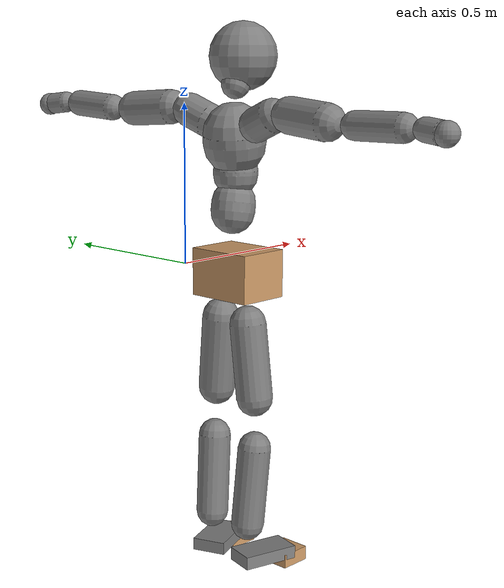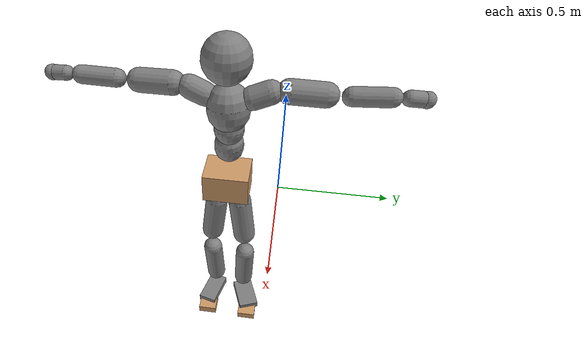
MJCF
<mujoco model="humanoid">
  <compiler coordinate="local" angle="radian"/>
  <asset>
    <texture type="skybox" builtin="gradient" rgb1=".4 .5 .6" rgb2="0 0 0" width="100" height="100"/>
    <texture builtin="flat" height="1278" mark="cross" markrgb="1 1 1" name="texgeom" random="0.01" rgb1="0.8 0.6 0.4" rgb2="0.8 0.6 0.4" type="cube" width="127"/>
    <texture builtin="checker" height="100" name="texplane" rgb1="0 0 0" rgb2="0.8 0.8 0.8" type="2d" width="100"/>
    <material name="MatPlane" reflectance="0.5" shininess="1" specular="1" texrepeat="60 60" texture="texplane"/>
    <material name="geom" texture="texgeom" texuniform="true"/>
  </asset>
  <worldbody>
    <light cutoff="100" diffuse="1 1 1" dir="-0 0 -1.3" directional="true" exponent="1" pos="0 0 1.3" specular=".1 .1 .1"/>
    <body name="Pelvis" pos="-0.0076 -0.2401 0.0196">
      <geom type="box" pos="-0.0055 0  -0.0121" size="0.083 0.1069 0.0722" density="1000" conaffinity="1" condim="3" contype="7" margin="0.001" rgba="0.8 0.6 .4 1" />
      <body name="L_Hip" pos="-0.022 0.0476 -0.0773">
        <joint name="L_Hip_x" type="hinge" pos="0 0 0" axis="1 0 0" stiffness="800" damping="80" armature="0.02" range="-180.0000 180.0000" limited="true"/>
        <joint name="L_Hip_y" type="hinge" pos="0 0 0" axis="0 1 0" stiffness="800" damping="80" armature="0.02" range="-180.0000 180.0000" limited="true"/>
        <joint name="L_Hip_z" type="hinge" pos="0 0 0" axis="0 0 1" stiffness="800" damping="80" armature="0.02" range="-180.0000 180.0000" limited="true"/>
        <geom type="capsule" contype="1" conaffinity="1" density="2040.816327" fromto="0.0039 0.0096 -0.0771 0.0155 0.0384 -0.3085" size="0.0564" />
        <body name="L_Knee" pos="0.0194 0.048 -0.3856">
          <joint name="L_Knee_x" type="hinge" pos="0 0 0" axis="1 0 0" stiffness="800" damping="80" armature="0.02" range="-180.0000 180.0000" limited="true"/>
          <joint name="L_Knee_y" type="hinge" pos="0 0 0" axis="0 1 0" stiffness="800" damping="80" armature="0.02" range="-180.0000 180.0000" limited="true"/>
          <joint name="L_Knee_z" type="hinge" pos="0 0 0" axis="0 0 1" stiffness="800" damping="80" armature="0.02" range="-180.0000 180.0000" limited="true"/>
          <geom type="capsule" contype="1" conaffinity="1" density="1234.567901" fromto="-0.0061 -0.0023 -0.0827 -0.0244 -0.0094 -0.3310" size="0.0499" />
          <body name="L_Ankle" pos="-0.0305 -0.0117 -0.4137">
            <joint name="L_Ankle_x" type="hinge" pos="0 0 0" axis="1 0 0" stiffness="800" damping="80" armature="0.02" range="-180.0000 180.0000" limited="true"/>
            <joint name="L_Ankle_y" type="hinge" pos="0 0 0" axis="0 1 0" stiffness="800" damping="80" armature="0.02" range="-180.0000 180.0000" limited="true"/>
            <joint name="L_Ankle_z" type="hinge" pos="0 0 0" axis="0 0 1" stiffness="800" damping="80" armature="0.02" range="-180.0000 180.0000" limited="true"/>
            <geom type="box" contype="1" conaffinity="1" density="1000" pos="0.0592 0.0223 -0.0298" size="0.0864 0.0523 0.019" quat="0.9839 0.0000 0.0000 0.1789" />
            <body name="L_Toe" pos="0.1185 0.0446 -0.0597">
              <joint name="L_Toe_x" type="hinge" pos="0 0 0" axis="1 0 0" stiffness="500" damping="50" armature="0.02" range="-180.0000 180.0000" limited="true"/>
              <joint name="L_Toe_y" type="hinge" pos="0 0 0" axis="0 1 0" stiffness="500" damping="50" armature="0.02" range="-180.0000 180.0000" limited="true"/>
              <joint name="L_Toe_z" type="hinge" pos="0 0 0" axis="0 0 1" stiffness="500" damping="50" armature="0.02" range="-180.0000 180.0000" limited="true"/>
              <geom type="box" contype="1" conaffinity="1" density="1000" pos="0.0248 -0.0030 0.0055" size="0.0496 0.0478 0.02" quat="1.0000 0.0000 0.0000 0.0000" margin="0.001" rgba="0.8 0.6 .4 1" />
            </body>
          </body>
        </body>
      </body>
      <body name="R_Hip" pos="-0.0197 -0.0479 -0.0844">
        <joint name="R_Hip_x" type="hinge" pos="0 0 0" axis="1 0 0" stiffness="800" damping="80" armature="0.02" range="-180.0000 180.0000" limited="true"/>
        <joint name="R_Hip_y" type="hinge" pos="0 0 0" axis="0 1 0" stiffness="800" damping="80" armature="0.02" range="-180.0000 180.0000" limited="true"/>
        <joint name="R_Hip_z" type="hinge" pos="0 0 0" axis="0 0 1" stiffness="800" damping="80" armature="0.02" range="-180.0000 180.0000" limited="true"/>
        <geom type="capsule" contype="1" conaffinity="1" density="2040.816327" fromto="0.0010 -0.0087 -0.0756 0.0041 -0.0348 -0.3024" size="0.0554" />
        <body name="R_Knee" pos="0.0051 -0.0435 -0.378">
          <joint name="R_Knee_x" type="hinge" pos="0 0 0" axis="1 0 0" stiffness="800" damping="80" armature="0.02" range="-180.0000 180.0000" limited="true"/>
          <joint name="R_Knee_y" type="hinge" pos="0 0 0" axis="0 1 0" stiffness="800" damping="80" armature="0.02" range="-180.0000 180.0000" limited="true"/>
          <joint name="R_Knee_z" type="hinge" pos="0 0 0" axis="0 0 1" stiffness="800" damping="80" armature="0.02" range="-180.0000 180.0000" limited="true"/>
          <geom type="capsule" contype="1" conaffinity="1" density="1234.567901" fromto="-0.0057 0.0036 -0.0812 -0.0228 0.0143 -0.3246" size="0.0503" />
          <body name="R_Ankle" pos="-0.0285 0.0179 -0.4058">
            <joint name="R_Ankle_x" type="hinge" pos="0 0 0" axis="1 0 0" stiffness="800" damping="80" armature="0.02" range="-180.0000 180.0000" limited="true"/>
            <joint name="R_Ankle_y" type="hinge" pos="0 0 0" axis="0 1 0" stiffness="800" damping="80" armature="0.02" range="-180.0000 180.0000" limited="true"/>
            <joint name="R_Ankle_z" type="hinge" pos="0 0 0" axis="0 0 1" stiffness="800" damping="80" armature="0.02" range="-180.0000 180.0000" limited="true"/>
            <geom type="box" contype="1" conaffinity="1" density="1000" pos="0.0636 -0.0164 -0.0300" size="0.0886 0.0474 0.0201" quat="0.9921 0.0000 0.0000 -0.1257" />
            <body name="R_Toe" pos="0.1273 -0.0328 -0.0599">
              <joint name="R_Toe_x" type="hinge" pos="0 0 0" axis="1 0 0" stiffness="500" damping="50" armature="0.02" range="-180.0000 180.0000" limited="true"/>
              <joint name="R_Toe_y" type="hinge" pos="0 0 0" axis="0 1 0" stiffness="500" damping="50" armature="0.02" range="-180.0000 180.0000" limited="true"/>
              <joint name="R_Toe_z" type="hinge" pos="0 0 0" axis="0 0 1" stiffness="500" damping="50" armature="0.02" range="-180.0000 180.0000" limited="true"/>
              <geom type="box" contype="1" conaffinity="1" density="1000" pos="0.0227 0.0042 0.0045" size="0.0493 0.0479 0.0216" quat="1.0000 0.0000 0.0000 0.0000" margin="0.001" rgba="0.8 0.6 .4 1" />
            </body>
          </body>
        </body>
      </body>
      <body name="Torso" pos="-0.0305 0.0038 0.1143">
        <joint name="Torso_x" type="hinge" pos="0 0 0" axis="1 0 0" stiffness="1000" damping="100" armature="0.02" range="-180.0000 180.0000" limited="true"/>
        <joint name="Torso_y" type="hinge" pos="0 0 0" axis="0 1 0" stiffness="1000" damping="100" armature="0.02" range="-180.0000 180.0000" limited="true"/>
        <joint name="Torso_z" type="hinge" pos="0 0 0" axis="0 0 1" stiffness="1000" damping="100" armature="0.02" range="-180.0000 180.0000" limited="true"/>
        <geom type="capsule" contype="1" conaffinity="1" density="1000" fromto="0.0154 0.0034 0.0861 0.0102 0.0023 0.0574" size="0.0658" />
        <body name="Spine" pos="0.0256 0.0056 0.1436">
          <joint name="Spine_x" type="hinge" pos="0 0 0" axis="1 0 0" stiffness="1000" damping="100" armature="0.02" range="-180.0000 180.0000" limited="true"/>
          <joint name="Spine_y" type="hinge" pos="0 0 0" axis="0 1 0" stiffness="1000" damping="100" armature="0.02" range="-180.0000 180.0000" limited="true"/>
          <joint name="Spine_z" type="hinge" pos="0 0 0" axis="0 0 1" stiffness="1000" damping="100" armature="0.02" range="-180.0000 180.0000" limited="true"/>
          <geom type="capsule" contype="1" conaffinity="1" density="1000" fromto="0.0002 0.0001 0.0352 0.0001 0.0001 0.0235" size="0.0669" />
          <body name="Chest" pos="0.0004 0.0002 0.0587">
            <joint name="Chest_x" type="hinge" pos="0 0 0" axis="1 0 0" stiffness="1000" damping="100" armature="0.02" range="-180.0000 180.0000" limited="true"/>
            <joint name="Chest_y" type="hinge" pos="0 0 0" axis="0 1 0" stiffness="1000" damping="100" armature="0.02" range="-180.0000 180.0000" limited="true"/>
            <joint name="Chest_z" type="hinge" pos="0 0 0" axis="0 0 1" stiffness="1000" damping="100" armature="0.02" range="-180.0000 180.0000" limited="true"/>
            <geom type="capsule" contype="1" conaffinity="1" density="1000" fromto="-0.0120 -0.0051 0.0851 -0.0080 -0.0034 0.0567" size="0.0935" />
            <body name="Neck" pos="-0.024 -0.0149 0.2096">
              <joint name="Neck_x" type="hinge" pos="0 0 0" axis="1 0 0" stiffness="500" damping="50" armature="0.02" range="-180.0000 180.0000" limited="true"/>
              <joint name="Neck_y" type="hinge" pos="0 0 0" axis="0 1 0" stiffness="500" damping="50" armature="0.02" range="-180.0000 180.0000" limited="true"/>
              <joint name="Neck_z" type="hinge" pos="0 0 0" axis="0 0 1" stiffness="500" damping="50" armature="0.02" range="-180.0000 180.0000" limited="true"/>
              <geom type="capsule" contype="1" conaffinity="1" density="1000" fromto="0.0098 0.0021 0.0197 0.0392 0.0085 0.0789" size="0.0435" />
              <body name="Head" pos="0.049 0.0106 0.0986">
                <joint name="Head_x" type="hinge" pos="0 0 0" axis="1 0 0" stiffness="500" damping="50" armature="0.02" range="-180.0000 180.0000" limited="true"/>
                <joint name="Head_y" type="hinge" pos="0 0 0" axis="0 1 0" stiffness="500" damping="50" armature="0.02" range="-180.0000 180.0000" limited="true"/>
                <joint name="Head_z" type="hinge" pos="0 0 0" axis="0 0 1" stiffness="500" damping="50" armature="0.02" range="-180.0000 180.0000" limited="true"/>
                <geom type="sphere" contype="1" conaffinity="1" density="1000" size="0.1013" pos="0 0 0" />
              </body>
            </body>
            <body name="L_Thorax" pos="-0.0141 0.0697 0.1097">
              <joint name="L_Thorax_x" type="hinge" pos="0 0 0" axis="1 0 0" stiffness="500" damping="50" armature="0.02" range="-180.0000 180.0000" limited="true"/>
              <joint name="L_Thorax_y" type="hinge" pos="0 0 0" axis="0 1 0" stiffness="500" damping="50" armature="0.02" range="-180.0000 180.0000" limited="true"/>
              <joint name="L_Thorax_z" type="hinge" pos="0 0 0" axis="0 0 1" stiffness="500" damping="50" armature="0.02" range="-180.0000 180.0000" limited="true"/>
              <geom type="capsule" contype="1" conaffinity="1" density="1000" fromto="-0.0029 0.0245 0.0095 -0.0117 0.0979 0.0382" size="0.0516" />
              <body name="L_Shoulder" pos="-0.0146 0.1224 0.0477">
                <joint name="L_Shoulder_x" type="hinge" pos="0 0 0" axis="1 0 0" stiffness="500" damping="50" armature="0.02" range="-180.0000 180.0000" limited="true"/>
                <joint name="L_Shoulder_y" type="hinge" pos="0 0 0" axis="0 1 0" stiffness="500" damping="50" armature="0.02" range="-180.0000 180.0000" limited="true"/>
                <joint name="L_Shoulder_z" type="hinge" pos="0 0 0" axis="0 0 1" stiffness="500" damping="50" armature="0.02" range="-180.0000 180.0000" limited="true"/>
                <geom type="capsule" contype="1" conaffinity="1" density="1000" fromto="-0.0046 0.0494 -0.0036 -0.0182 0.1976 -0.0142" size="0.0531" />
                <body name="L_Elbow" pos="-0.0228 0.2469 -0.0178">
                  <joint name="L_Elbow_x" type="hinge" pos="0 0 0" axis="1 0 0" stiffness="500" damping="50" armature="0.02" range="-180.0000 180.0000" limited="true"/>
                  <joint name="L_Elbow_y" type="hinge" pos="0 0 0" axis="0 1 0" stiffness="500" damping="50" armature="0.02" range="-180.0000 180.0000" limited="true"/>
                  <joint name="L_Elbow_z" type="hinge" pos="0 0 0" axis="0 0 1" stiffness="500" damping="50" armature="0.02" range="-180.0000 180.0000" limited="true"/>
                  <geom type="capsule" contype="1" conaffinity="1" density="1000" fromto="-0.0012 0.0520 0.0026 -0.0048 0.2079 0.0102" size="0.0412" />
                  <body name="L_Wrist" pos="-0.006 0.2599 0.0128">
                    <joint name="L_Wrist_x" type="hinge" pos="0 0 0" axis="1 0 0" stiffness="300" damping="30" armature="0.02" range="-180.0000 180.0000" limited="true"/>
                    <joint name="L_Wrist_y" type="hinge" pos="0 0 0" axis="0 1 0" stiffness="300" damping="30" armature="0.02" range="-180.0000 180.0000" limited="true"/>
                    <joint name="L_Wrist_z" type="hinge" pos="0 0 0" axis="0 0 1" stiffness="300" damping="30" armature="0.02" range="-180.0000 180.0000" limited="true"/>
                    <geom type="capsule" contype="1" conaffinity="1" density="1000" fromto="-0.0031 0.0173 -0.0022 -0.0123 0.0691 -0.0086" size="0.0337" />
                    <body name="L_Hand" pos="-0.0154 0.0863 -0.0108">
                      <joint name="L_Hand_x" type="hinge" pos="0 0 0" axis="1 0 0" stiffness="300" damping="30" armature="0.02" range="-180.0000 180.0000" limited="true"/>
                      <joint name="L_Hand_y" type="hinge" pos="0 0 0" axis="0 1 0" stiffness="300" damping="30" armature="0.02" range="-180.0000 180.0000" limited="true"/>
                      <joint name="L_Hand_z" type="hinge" pos="0 0 0" axis="0 0 1" stiffness="300" damping="30" armature="0.02" range="-180.0000 180.0000" limited="true"/>
                      <geom type="sphere" contype="1" conaffinity="1" density="1000" size="0.0354" pos="0 0 0" />
                    </body>
                  </body>
                </body>
              </body>
            </body>
            <body name="R_Thorax" pos="-0.0221 -0.0802 0.1063">
              <joint name="R_Thorax_x" type="hinge" pos="0 0 0" axis="1 0 0" stiffness="500" damping="50" armature="0.02" range="-180.0000 180.0000" limited="true"/>
              <joint name="R_Thorax_y" type="hinge" pos="0 0 0" axis="0 1 0" stiffness="500" damping="50" armature="0.02" range="-180.0000 180.0000" limited="true"/>
              <joint name="R_Thorax_z" type="hinge" pos="0 0 0" axis="0 0 1" stiffness="500" damping="50" armature="0.02" range="-180.0000 180.0000" limited="true"/>
              <geom type="capsule" contype="1" conaffinity="1" density="1000" fromto="-0.0012 -0.0220 0.0097 -0.0050 -0.0880 0.0387" size="0.0511" />
              <body name="R_Shoulder" pos="-0.0062 -0.11 0.0484">
                <joint name="R_Shoulder_x" type="hinge" pos="0 0 0" axis="1 0 0" stiffness="500" damping="50" armature="0.02" range="-180.0000 180.0000" limited="true"/>
                <joint name="R_Shoulder_y" type="hinge" pos="0 0 0" axis="0 1 0" stiffness="500" damping="50" armature="0.02" range="-180.0000 180.0000" limited="true"/>
                <joint name="R_Shoulder_z" type="hinge" pos="0 0 0" axis="0 0 1" stiffness="500" damping="50" armature="0.02" range="-180.0000 180.0000" limited="true"/>
                <geom type="capsule" contype="1" conaffinity="1" density="1000" fromto="-0.0059 -0.0495 -0.0036 -0.0237 -0.1979 -0.0143" size="0.053" />
                <body name="R_Elbow" pos="-0.0296 -0.2474 -0.0178">
                  <joint name="R_Elbow_x" type="hinge" pos="0 0 0" axis="1 0 0" stiffness="500" damping="50" armature="0.02" range="-180.0000 180.0000" limited="true"/>
                  <joint name="R_Elbow_y" type="hinge" pos="0 0 0" axis="0 1 0" stiffness="500" damping="50" armature="0.02" range="-180.0000 180.0000" limited="true"/>
                  <joint name="R_Elbow_z" type="hinge" pos="0 0 0" axis="0 0 1" stiffness="500" damping="50" armature="0.02" range="-180.0000 180.0000" limited="true"/>
                  <geom type="capsule" contype="1" conaffinity="1" density="1000" fromto="-0.0005 -0.0517 0.0009 -0.0019 -0.2067 0.0037" size="0.0405" />
                  <body name="R_Wrist" pos="-0.0024 -0.2583 0.0047">
                    <joint name="R_Wrist_x" type="hinge" pos="0 0 0" axis="1 0 0" stiffness="300" damping="30" armature="0.02" range="-180.0000 180.0000" limited="true"/>
                    <joint name="R_Wrist_y" type="hinge" pos="0 0 0" axis="0 1 0" stiffness="300" damping="30" armature="0.02" range="-180.0000 180.0000" limited="true"/>
                    <joint name="R_Wrist_z" type="hinge" pos="0 0 0" axis="0 0 1" stiffness="300" damping="30" armature="0.02" range="-180.0000 180.0000" limited="true"/>
                    <geom type="capsule" contype="1" conaffinity="1" density="1000" fromto="-0.0020 -0.0170 -0.0016 -0.0081 -0.0679 -0.0065" size="0.0327" />
                    <body name="R_Hand" pos="-0.0101 -0.0849 -0.0082">
                      <joint name="R_Hand_x" type="hinge" pos="0 0 0" axis="1 0 0" stiffness="300" damping="30" armature="0.02" range="-180.0000 180.0000" limited="true"/>
                      <joint name="R_Hand_y" type="hinge" pos="0 0 0" axis="0 1 0" stiffness="300" damping="30" armature="0.02" range="-180.0000 180.0000" limited="true"/>
                      <joint name="R_Hand_z" type="hinge" pos="0 0 0" axis="0 0 1" stiffness="300" damping="30" armature="0.02" range="-180.0000 180.0000" limited="true"/>
                      <geom type="sphere" contype="1" conaffinity="1" density="1000" size="0.0344" pos="0 0 0" />
                    </body>
                  </body>
                </body>
              </body>
            </body>
          </body>
        </body>
      </body>
      <joint type="free" name="Pelvis" limited="false" actuatorfrclimited="false" />
    </body>
  </worldbody>
  <actuator>
    <motor name="L_Hip_x" joint="L_Hip_x" gear="500"/>
    <motor name="L_Hip_y" joint="L_Hip_y" gear="500"/>
    <motor name="L_Hip_z" joint="L_Hip_z" gear="500"/>
    <motor name="L_Knee_x" joint="L_Knee_x" gear="500"/>
    <motor name="L_Knee_y" joint="L_Knee_y" gear="500"/>
    <motor name="L_Knee_z" joint="L_Knee_z" gear="500"/>
    <motor name="L_Ankle_x" joint="L_Ankle_x" gear="500"/>
    <motor name="L_Ankle_y" joint="L_Ankle_y" gear="500"/>
    <motor name="L_Ankle_z" joint="L_Ankle_z" gear="500"/>
    <motor name="L_Toe_x" joint="L_Toe_x" gear="500"/>
    <motor name="L_Toe_y" joint="L_Toe_y" gear="500"/>
    <motor name="L_Toe_z" joint="L_Toe_z" gear="500"/>
    <motor name="R_Hip_x" joint="R_Hip_x" gear="500"/>
    <motor name="R_Hip_y" joint="R_Hip_y" gear="500"/>
    <motor name="R_Hip_z" joint="R_Hip_z" gear="500"/>
    <motor name="R_Knee_x" joint="R_Knee_x" gear="500"/>
    <motor name="R_Knee_y" joint="R_Knee_y" gear="500"/>
    <motor name="R_Knee_z" joint="R_Knee_z" gear="500"/>
    <motor name="R_Ankle_x" joint="R_Ankle_x" gear="500"/>
    <motor name="R_Ankle_y" joint="R_Ankle_y" gear="500"/>
    <motor name="R_Ankle_z" joint="R_Ankle_z" gear="500"/>
    <motor name="R_Toe_x" joint="R_Toe_x" gear="500"/>
    <motor name="R_Toe_y" joint="R_Toe_y" gear="500"/>
    <motor name="R_Toe_z" joint="R_Toe_z" gear="500"/>
    <motor name="Torso_x" joint="Torso_x" gear="500"/>
    <motor name="Torso_y" joint="Torso_y" gear="500"/>
    <motor name="Torso_z" joint="Torso_z" gear="500"/>
    <motor name="Spine_x" joint="Spine_x" gear="500"/>
    <motor name="Spine_y" joint="Spine_y" gear="500"/>
    <motor name="Spine_z" joint="Spine_z" gear="500"/>
    <motor name="Chest_x" joint="Chest_x" gear="500"/>
    <motor name="Chest_y" joint="Chest_y" gear="500"/>
    <motor name="Chest_z" joint="Chest_z" gear="500"/>
    <motor name="Neck_x" joint="Neck_x" gear="500"/>
    <motor name="Neck_y" joint="Neck_y" gear="500"/>
    <motor name="Neck_z" joint="Neck_z" gear="500"/>
    <motor name="Head_x" joint="Head_x" gear="500"/>
    <motor name="Head_y" joint="Head_y" gear="500"/>
    <motor name="Head_z" joint="Head_z" gear="500"/>
    <motor name="L_Thorax_x" joint="L_Thorax_x" gear="500"/>
    <motor name="L_Thorax_y" joint="L_Thorax_y" gear="500"/>
    <motor name="L_Thorax_z" joint="L_Thorax_z" gear="500"/>
    <motor name="L_Shoulder_x" joint="L_Shoulder_x" gear="500"/>
    <motor name="L_Shoulder_y" joint="L_Shoulder_y" gear="500"/>
    <motor name="L_Shoulder_z" joint="L_Shoulder_z" gear="500"/>
    <motor name="L_Elbow_x" joint="L_Elbow_x" gear="500"/>
    <motor name="L_Elbow_y" joint="L_Elbow_y" gear="500"/>
    <motor name="L_Elbow_z" joint="L_Elbow_z" gear="500"/>
    <motor name="L_Wrist_x" joint="L_Wrist_x" gear="500"/>
    <motor name="L_Wrist_y" joint="L_Wrist_y" gear="500"/>
    <motor name="L_Wrist_z" joint="L_Wrist_z" gear="500"/>
    <motor name="L_Hand_x" joint="L_Hand_x" gear="500"/>
    <motor name="L_Hand_y" joint="L_Hand_y" gear="500"/>
    <motor name="L_Hand_z" joint="L_Hand_z" gear="500"/>
    <motor name="R_Thorax_x" joint="R_Thorax_x" gear="500"/>
    <motor name="R_Thorax_y" joint="R_Thorax_y" gear="500"/>
    <motor name="R_Thorax_z" joint="R_Thorax_z" gear="500"/>
    <motor name="R_Shoulder_x" joint="R_Shoulder_x" gear="500"/>
    <motor name="R_Shoulder_y" joint="R_Shoulder_y" gear="500"/>
    <motor name="R_Shoulder_z" joint="R_Shoulder_z" gear="500"/>
    <motor name="R_Elbow_x" joint="R_Elbow_x" gear="500"/>
    <motor name="R_Elbow_y" joint="R_Elbow_y" gear="500"/>
    <motor name="R_Elbow_z" joint="R_Elbow_z" gear="500"/>
    <motor name="R_Wrist_x" joint="R_Wrist_x" gear="500"/>
    <motor name="R_Wrist_y" joint="R_Wrist_y" gear="500"/>
    <motor name="R_Wrist_z" joint="R_Wrist_z" gear="500"/>
    <motor name="R_Hand_x" joint="R_Hand_x" gear="500"/>
    <motor name="R_Hand_y" joint="R_Hand_y" gear="500"/>
    <motor name="R_Hand_z" joint="R_Hand_z" gear="500"/>
  </actuator>
  <contact>
    <exclude body1="Torso" body2="Chest"/>
    <exclude body1="Head" body2="Chest"/>
    <exclude body1="R_Knee" body2="R_Toe"/>
    <exclude body1="R_Knee" body2="L_Ankle"/>
    <exclude body1="R_Knee" body2="L_Toe"/>
    <exclude body1="L_Knee" body2="L_Toe"/>
    <exclude body1="L_Knee" body2="R_Ankle"/>
    <exclude body1="L_Knee" body2="R_Toe"/>
    <exclude body1="L_Shoulder" body2="Chest"/>
    <exclude body1="R_Shoulder" body2="Chest"/>
  </contact>
  <sensor/>
  <size njmax="700" nconmax="700"/>
</mujoco>
